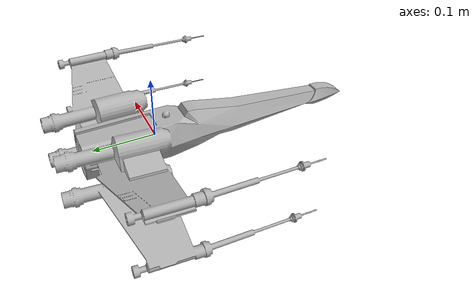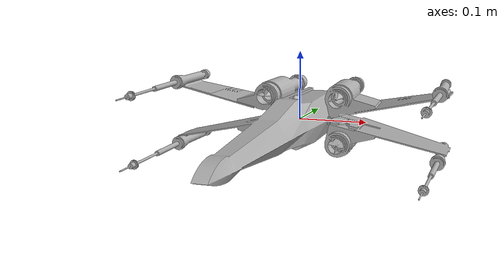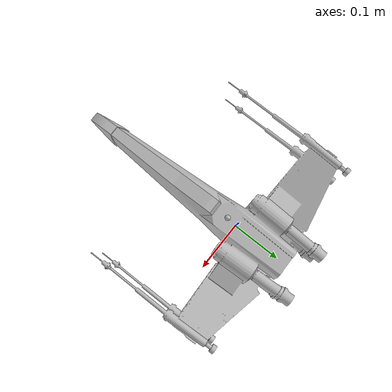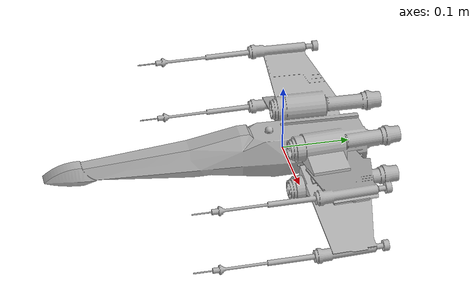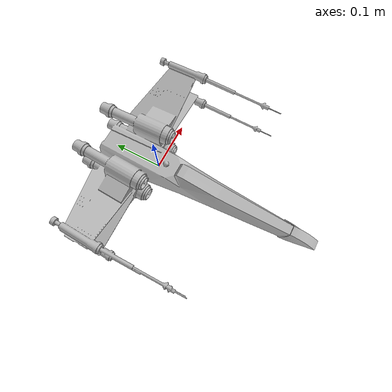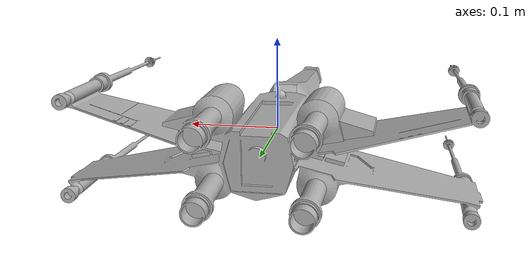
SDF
<?xml version="1.0"?>
<sdf version="1.7">
  <model name="xwing">
    <link name="xwing">
      <inertial>
        <mass>1.0</mass>
        <inertia>
          <ixx>0.001736</ixx>
          <ixy>0</ixy>
          <ixz>0</ixz>
          <iyy>0.001098</iyy>
          <iyz>0</iyz>
          <izz>0.002481</izz>
        </inertia>
      </inertial>
      <visual name="xwing_visual">
        <geometry>
          <mesh>
            <uri>xwing.obj</uri>
          </mesh>
        </geometry>
      </visual>
    </link>
  </model>
</sdf>
